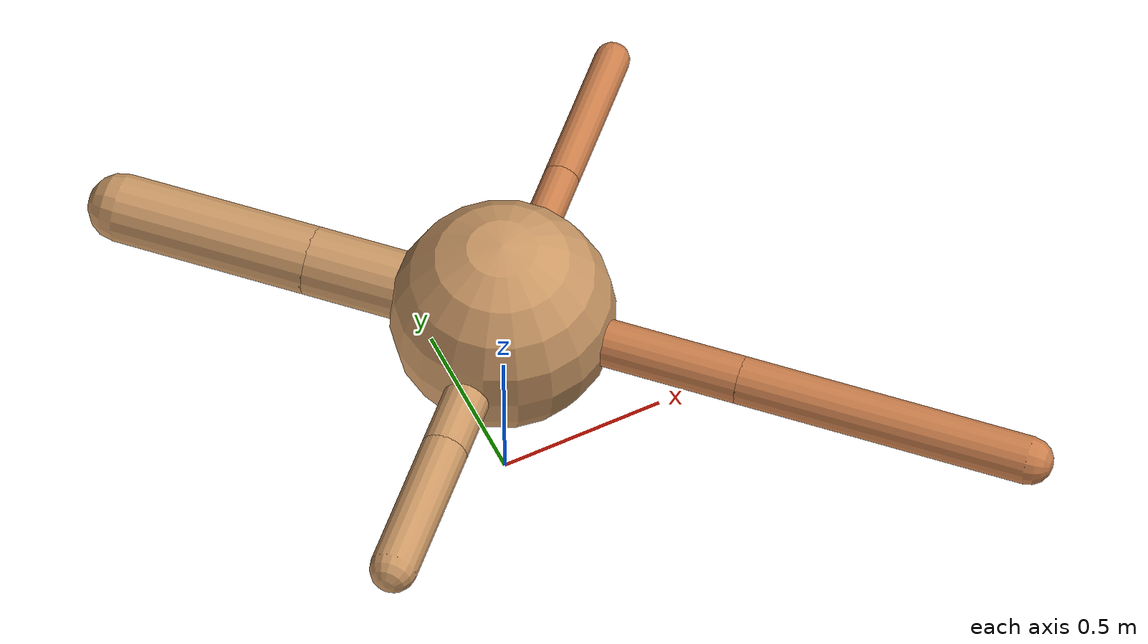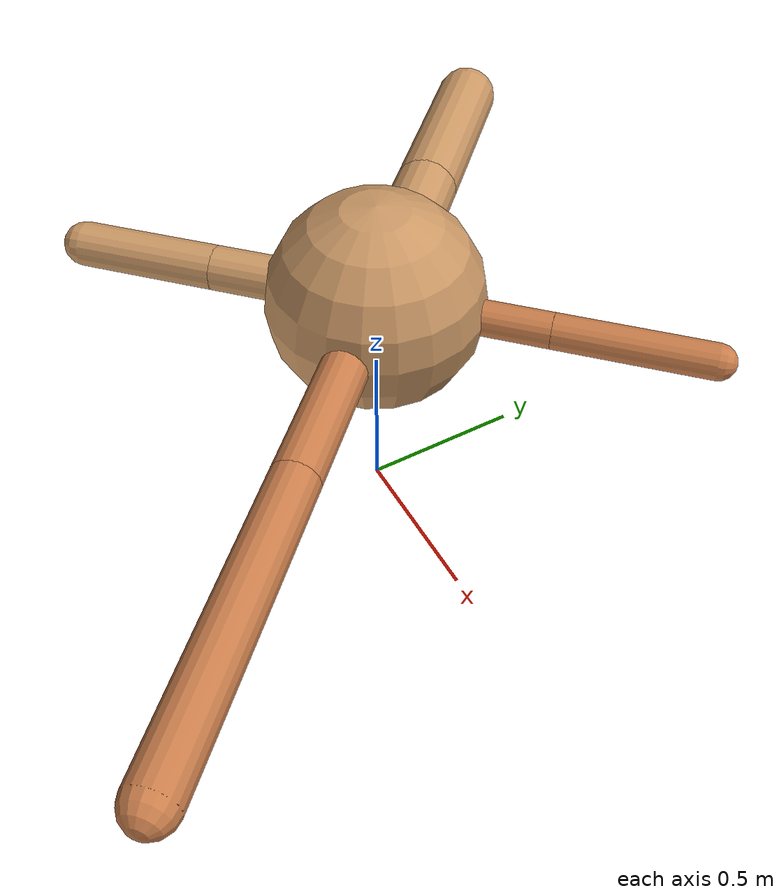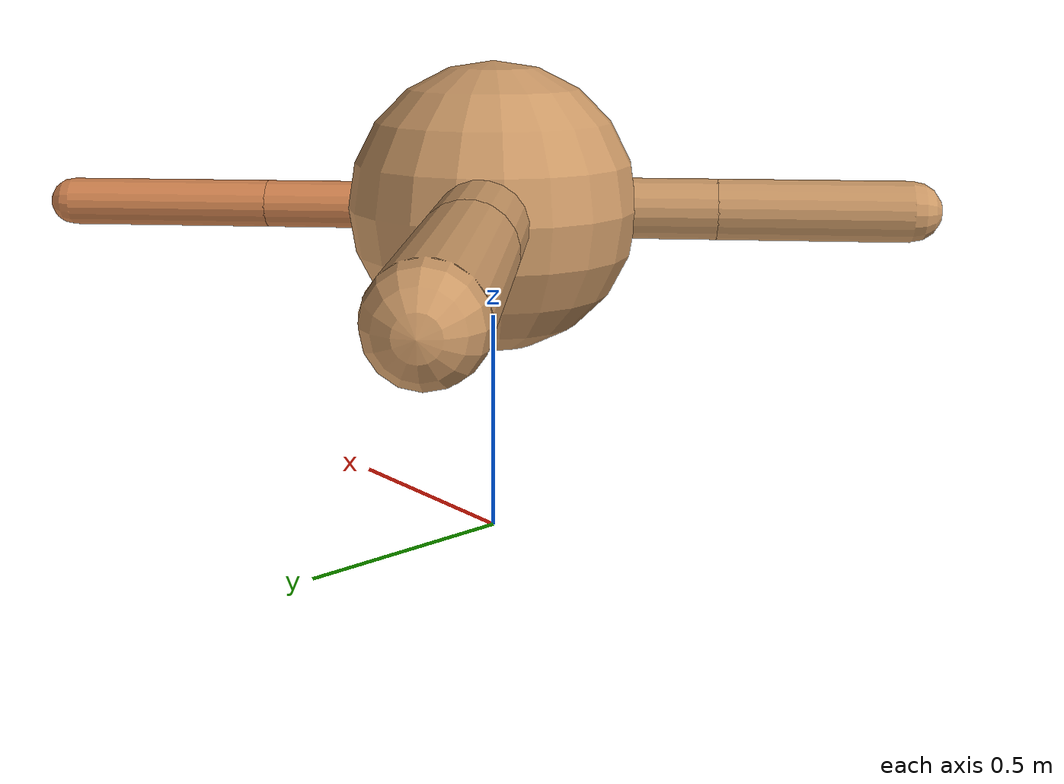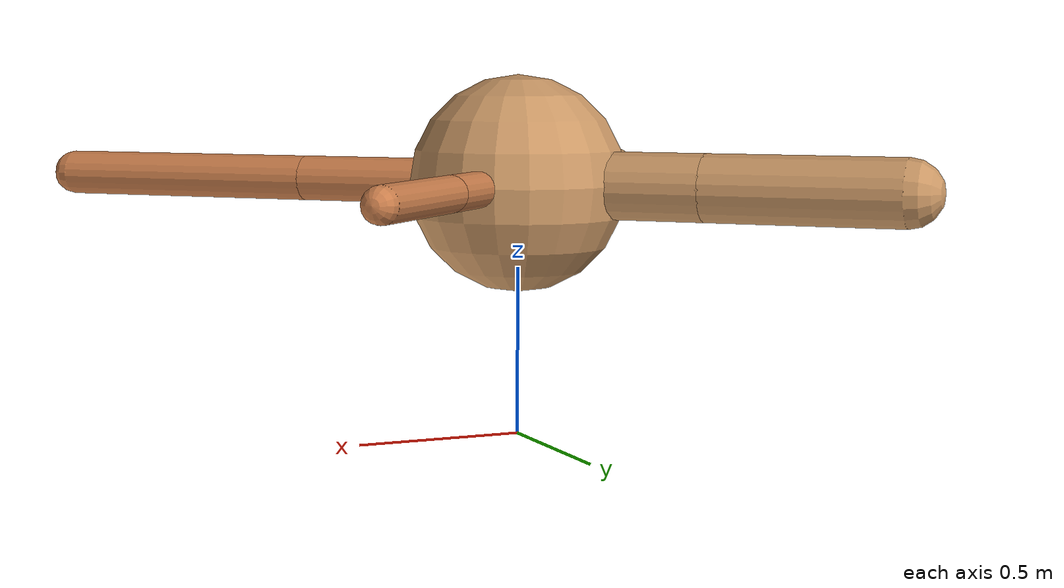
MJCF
<?xml version="1.0" ?>
<mujoco model="ant">

	<compiler angle="degree" coordinate="local" inertiafromgeom="true"/>

	<option integrator="RK4" timestep="0.01"/>

	<custom>

		<numeric data="0.0 0.0 0.55 1.0 0.0 0.0 0.0 0.0 1.0 0.0 -1.0 0.0 -1.0 0.0 1.0" name="init_qpos"/>

	</custom>

	<default>

		<joint armature="1" damping="1" limited="true"/>

		<geom conaffinity="0" condim="3" density="5.0" friction="1.5 0.1 0.1" margin="0.01" rgba="0.8 0.6 0.4 1"/>

	</default>

	<worldbody>

		<body name="torso" pos="0 0 0.75">

			<geom name="torso_geom" pos="0 0 0" size="0.3215485150799494" type="sphere"/>

			<!--joint armature="0" damping="0" limited="false" margin="0.01" name="root" pos="0 0 0" type="free"/-->

			<body name="front_left_leg" pos="0 0 0">

				<geom fromto="0 0 0 0.2 0.2 0" name="aux_1_geom" size="0.05219049527892275" type="capsule" rgba=".8 .5 .3 1"/>

				<body name="aux_1" pos="0.2 0.2 0">

					<joint axis="0 0 1" name="hip_1" pos="0.0 0.0 0.0" range="-40 40" type="hinge"/>

					<geom fromto="0 0 0 0.15915585964842005 0.15915585964842005 0" name="left_leg_geom" size="0.05219049527892275" type="capsule" rgba=".8 .5 .3 1"/>

					<body pos="0.15915585964842005 0.15915585964842005 0" name="front_left_foot">

						<joint axis="-1 1 0" name="ankle_1" pos="0.0 0.0 0.0" range="30 100" type="hinge"/>

						<geom fromto="0 0 0 0.3183117192968401 0.3183117192968401 0" name="left_ankle_geom" size="0.05219049527892275" type="capsule" rgba=".8 .5 .3 1"/>

					</body>

				</body>

			</body>

			<body name="front_right_leg" pos="0 0 0">

				<geom fromto="0 0 0 -0.2 0.2 0" name="aux_2_geom" size="0.09950232739569023" type="capsule"/>

				<body name="aux_2" pos="-0.2 0.2 0">

					<joint axis="0 0 1" name="hip_2" pos="0.0 0.0 0.0" range="-40 40" type="hinge"/>

					<geom fromto="0 0 0 -0.2037093892344476 0.2037093892344476 0" name="right_leg_geom" size="0.09950232739569023" type="capsule"/>

					<body pos="-0.2037093892344476 0.2037093892344476 0" name="front_right_foot">

						<joint axis="1 1 0" name="ankle_2" pos="0.0 0.0 0.0" range="-100 -30" type="hinge"/>

						<geom fromto="0 0 0 -0.4074187784688952 0.4074187784688952 0" name="right_ankle_geom" size="0.09950232739569023" type="capsule"/>

					</body>

				</body>

			</body>

			<body name="left_back_leg" pos="0 0 0">

				<geom fromto="0 0 0 -0.2 -0.2 0" name="aux_3_geom" size="0.06681473667310513" type="capsule"/>

				<body name="aux_3" pos="-0.2 -0.2 0">

					<joint axis="0 0 1" name="hip_3" pos="0.0 0.0 0.0" range="-40 40" type="hinge"/>

					<geom fromto="0 0 0 -0.1476722035459639 -0.1476722035459639 0" name="back_leg_geom" size="0.06681473667310513" type="capsule"/>

					<body pos="-0.1476722035459639 -0.1476722035459639 0" name="left_back_foot">

						<joint axis="-1 1 0" name="ankle_3" pos="0.0 0.0 0.0" range="-100 -30" type="hinge"/>

						<geom fromto="0 0 0 -0.2953444070919278 -0.2953444070919278 0" name="third_ankle_geom" size="0.06681473667310513" type="capsule"/>

					</body>

				</body>

			</body>

			<body name="right_back_leg" pos="0 0 0">

				<geom fromto="0 0 0 0.2 -0.2 0" name="aux_4_geom" size="0.06860054861725669" type="capsule" rgba=".8 .5 .3 1"/>

				<body name="aux_4" pos="0.2 -0.2 0">

					<joint axis="0 0 1" name="hip_4" pos="0.0 0.0 0.0" range="-40 40" type="hinge"/>

					<geom fromto="0 0 0 0.2968768947958979 -0.2968768947958979 0" name="rightback_leg_geom" size="0.06860054861725669" type="capsule" rgba=".8 .5 .3 1"/>

					<body pos="0.2968768947958979 -0.2968768947958979 0" name="right_back_foot">

						<joint axis="1 1 0" name="ankle_4" pos="0.0 0.0 0.0" range="30 100" type="hinge"/>

						<geom fromto="0 0 0 0.5937537895917958 -0.5937537895917958 0" name="fourth_ankle_geom" size="0.06860054861725669" type="capsule" rgba=".8 .5 .3 1"/>

					</body>

				</body>

			</body>

		</body>

	</worldbody>

	<actuator>

		<motor ctrllimited="true" ctrlrange="-1.0 1.0" joint="hip_4" gear="150"/>

		<motor ctrllimited="true" ctrlrange="-1.0 1.0" joint="ankle_4" gear="150"/>

		<motor ctrllimited="true" ctrlrange="-1.0 1.0" joint="hip_1" gear="150"/>

		<motor ctrllimited="true" ctrlrange="-1.0 1.0" joint="ankle_1" gear="150"/>

		<motor ctrllimited="true" ctrlrange="-1.0 1.0" joint="hip_2" gear="150"/>

		<motor ctrllimited="true" ctrlrange="-1.0 1.0" joint="ankle_2" gear="150"/>

		<motor ctrllimited="true" ctrlrange="-1.0 1.0" joint="hip_3" gear="150"/>

		<motor ctrllimited="true" ctrlrange="-1.0 1.0" joint="ankle_3" gear="150"/>

	</actuator>

</mujoco>
